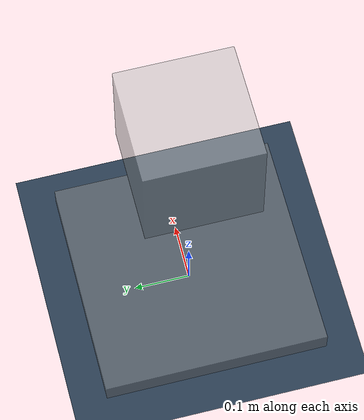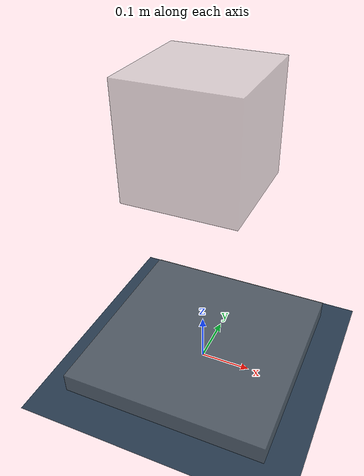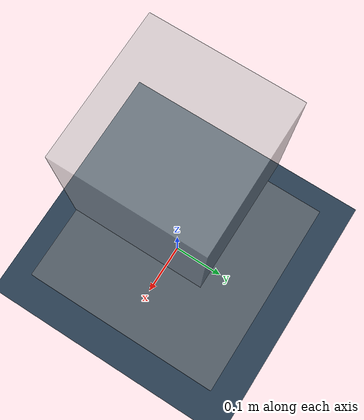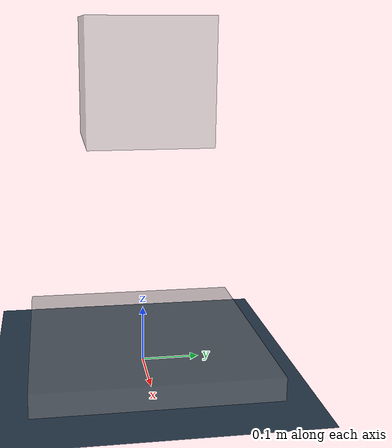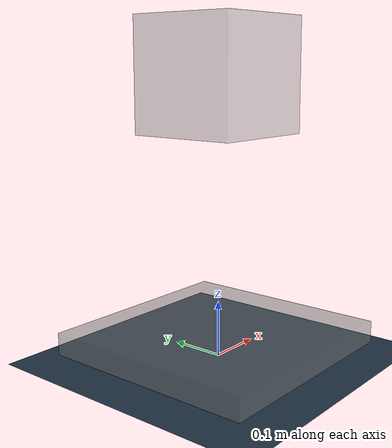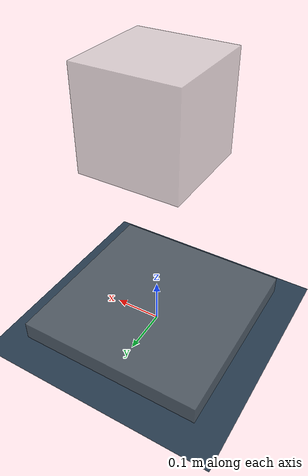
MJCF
<mujoco model="myrmex demo">
  <option timestep="0.001" gravity="0 0 -9.81" />
  <visual>
    <rgba haze="0.15 0.25 0.35 1" />
    <quality shadowsize="4096" />
    <map stiffness="700" shadowscale="0.5" fogstart="10" fogend="15" zfar="40" haze="0.3" />
    <scale forcewidth="0.001" />
  </visual>

  <asset>
    <texture type="skybox" builtin="gradient" rgb1="0.3 0.5 0.7" rgb2="0 0 0" width="512"
      height="512" />
    <texture name="texplane" type="2d" builtin="checker" rgb1=".2 .3 .4" rgb2=".1 0.15 0.2"
      width="512" height="512" mark="cross" markrgb=".8 .8 .8" />
    <material name="matplane" reflectance="0.3" texture="texplane" texrepeat="1 1" texuniform="true" />
  </asset>

  <extension>
    <plugin plugin="mujoco.contact_surfaces">
      <instance name="contact_surfaces">
        <!-- Path to the sensor file. The path has to be absolute or relative to the plugin library -->
        <config key="sensor_config" value="config/flat_taxel_sensor.yaml" />
      </instance>
    </plugin>
  </extension>

  <sensor>
    <plugin name="tactile_sensor" instance="contact_surfaces"/>
  </sensor>

  <custom>
    <!-- All custom parameters related to contact surfaces have the prefix cs:: -->
    <text name="cs::HydroelasticContactRepresentation" data="kTriangle" />
    <numeric name="cs::VisualizeSurfaces" data="1" />
    <!-- If cs::ApplyContactSurfaceForces is 0 Contact Surfaces are only computed for tactile
    sensors and standard mujoco contacts are used to compute physics -->
    <numeric name="cs::ApplyContactSurfaceForces" data="1" />
    <numeric name="cs::box1" data="0 1.0 0.05 0.3 0.3" />
    <numeric name="cs::plate" data="0 1.0 0 0.3 0.3" />
    <numeric name="cs::myrmex_foam" data="5e4 5.0 0 0.3 0.3" />
  </custom>

  <worldbody>
    <light directional="true" diffuse=".4 .4 .4" specular="0.1 0.1 0.1" pos="0 0 5.0" dir="0 0 -1"
      castshadow="false" />
    <light directional="true" diffuse=".6 .6 .6" specular="0.2 0.2 0.2" pos="0 0 4" dir="0 0 -1" />
    <geom name="ground" type="plane" size="0 0 1" pos="0 0 0" quat="1 0 0 0" material="matplane"
      condim="1" />
    <body name="body_box1" pos="0 0 0.5">
      <freejoint />
      <geom name="box1" type="box" size="0.1 0.1 0.1" rgba="0.7 0.7 0.7 0.5" />
    </body>
    <body name="body_myrmex" pos="0 0.0 0.0">
      <geom name="myrmex_foam" type="box" pos="0 0 0.033" size="0.2 0.2 0.02" rgba="0.5 0.5 0.5 0.5" />
    </body>
  </worldbody>
</mujoco>
